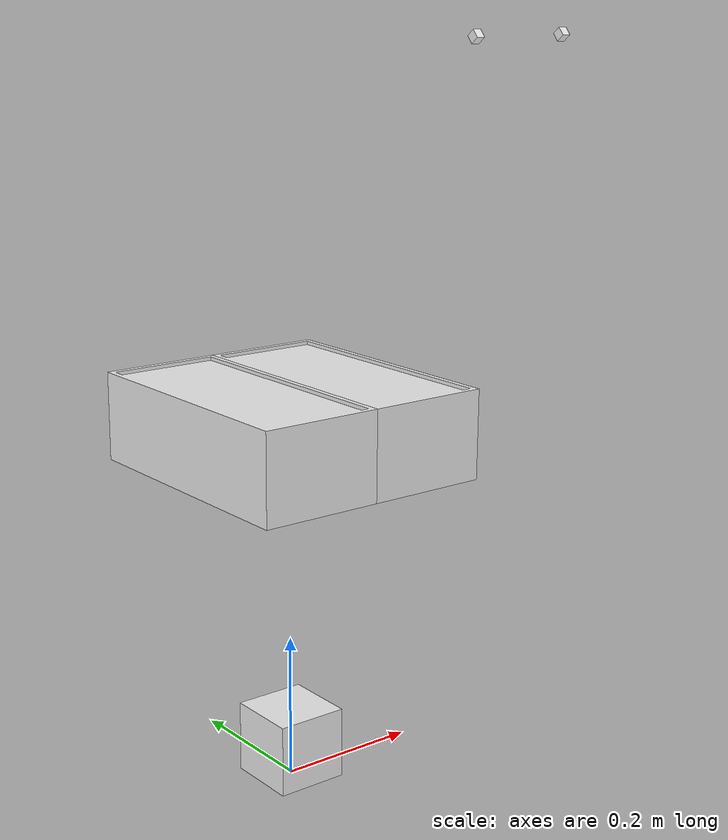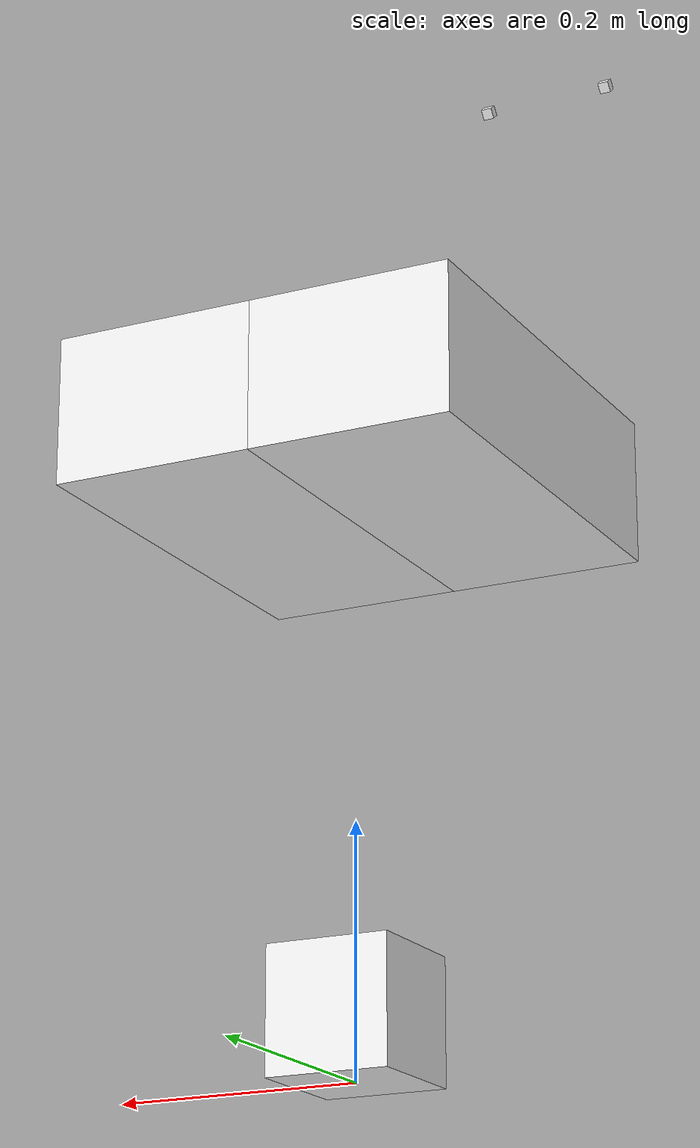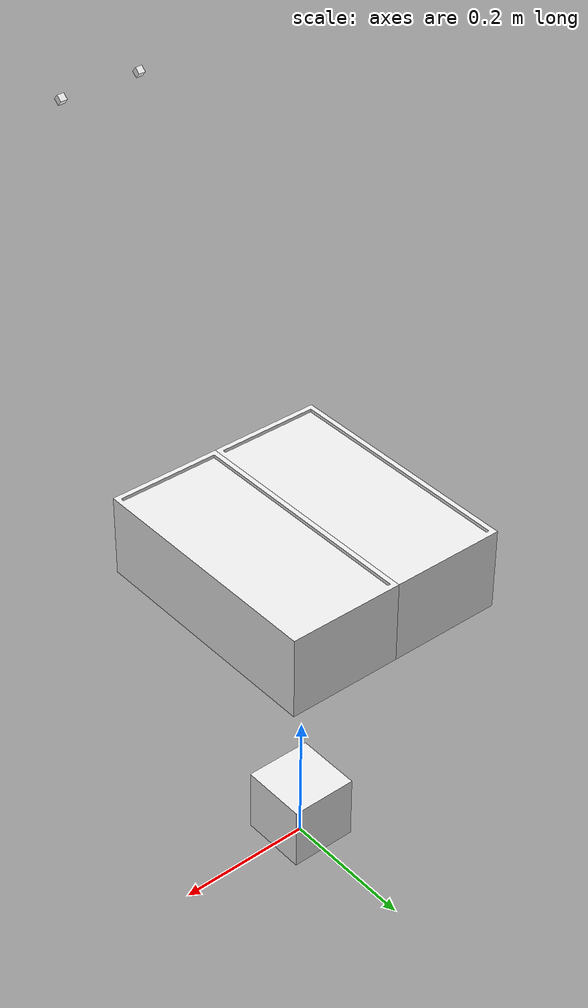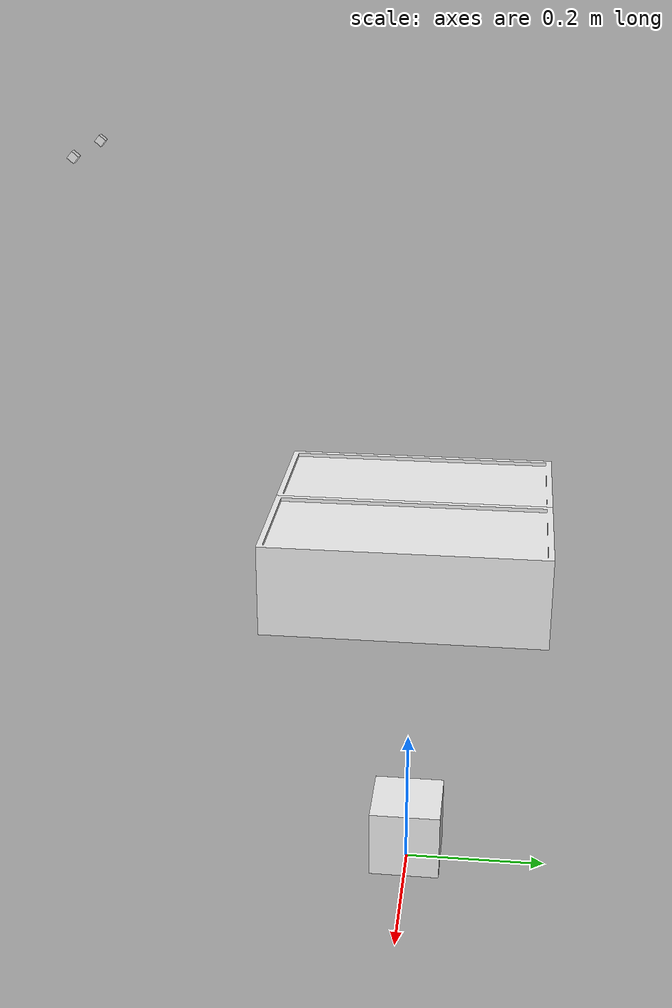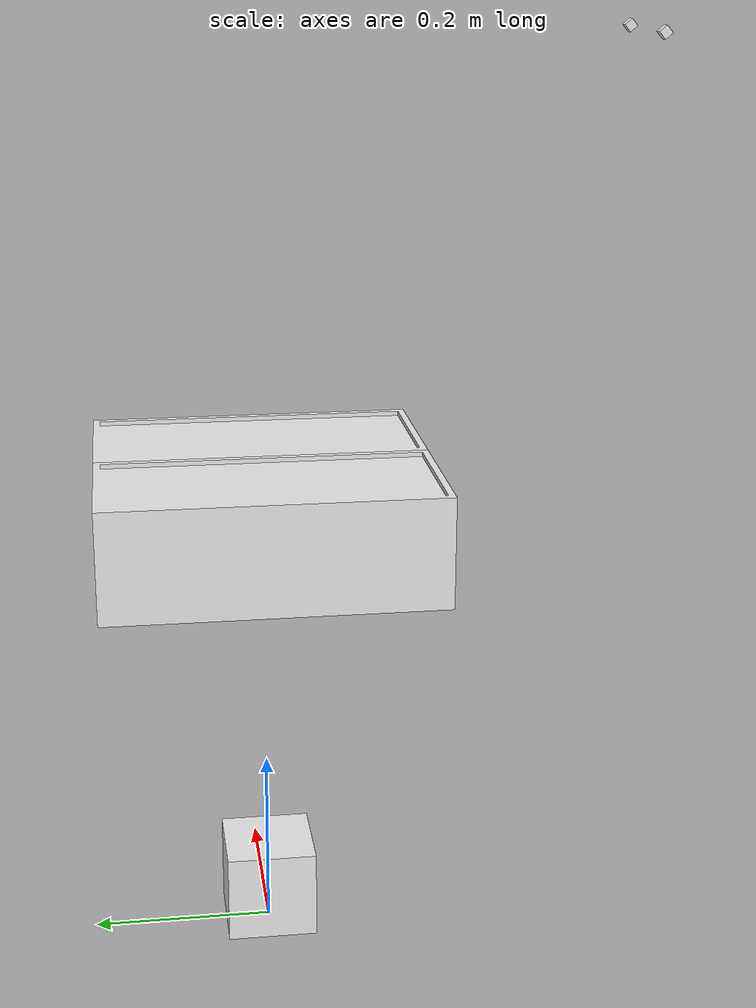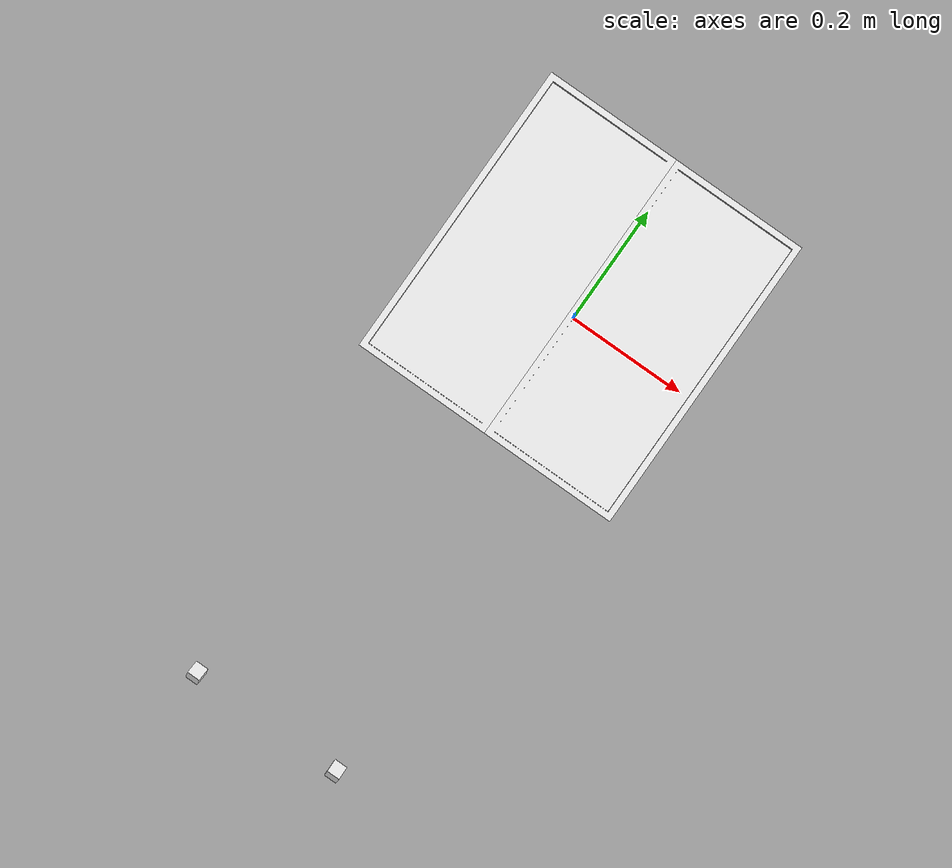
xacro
<?xml version="1.0"?>
<robot name="ice_cream_trays"
xmlns:xacro="http://www.ros.org/wiki/xacro">

<xacro:include filename="$(find scooping_cv)/models/zed_camera_gazebo.gazebo"/>

<!--__________CONSTANTS__________-->
<xacro:property name="deg_to_rad" value="0.01745329251994329577"/>

<!--__________VARIABLES__________-->
<xacro:property name= "baseline" value="0.65" />
<xacro:property name= "tray_length" value="0.36"/>
<xacro:property name= "tray_width" value="0.165"/>
<xacro:property name= "tray_height" value="0.12"/>
<xacro:property name= "baseline" value="0.12" />
<xacro:property name= "camera_size" value="0.01"/>

<!--__________LINKS____________-->
	<link name= "world"/> <!--fixed world link-->

	<link name= "base_link">
		<visual>
			<geometry>
				<box size="0.1 0.1 0.1"/>
			</geometry>
			<origin rpy="0 0 0" xyz="0 0 0.05"/>
			<material name="white"/>
		</visual>

		<inertial>
			<mass value="1"/>
			<origin xyz="0 0 0" rpy="0 0 0"/>
			<inertia ixx="1" ixy="0" ixz="0" iyy="1" iyz="0" izz="1" />
			<origin rpy="0 0 0" xyz="0 0 0"/>
		</inertial>

		<collision>
			<geometry>
				<box size="0.1 0.1 0.1"/>
			</geometry>
			<origin rpy="0 0 0" xyz="0 0 0.05"/>
		</collision>
	</link>

	<link name= "vanilla_link">
		<visual>
			<geometry>
				<mesh filename="package://scooping_cv/meshes/ice_cream_tray_vanilla.dae"/>

			</geometry>
			<origin rpy="0 0 ${deg_to_rad*90}" xyz="${tray_width/2} ${-tray_length/2} ${-tray_height/2}"/>
			<material name="white"/>
		</visual>

		<inertial>
			<mass value="1e-5"/>
			<origin xyz="0 0 0" rpy="0 0 0"/>
			<inertia ixx="1e-6" ixy="0" ixz="0" iyy="1e-6" iyz="0" izz="1e-6" />
			<origin rpy="0 0 0" xyz="0 0 0"/>
		</inertial>

		<collision>
			<geometry>
				<box size="${tray_width} ${tray_length} ${tray_height}"/>
			</geometry>
			<origin rpy="0 0 0" xyz="0 0 0"/>
		</collision>
	</link>

    <link name= "chocolate_link">
		<visual>
			<geometry>
				<mesh filename="package://scooping_cv/meshes/ice_cream_tray_chocolate.dae"/>
			</geometry>
			<origin rpy="0 0 ${deg_to_rad*90}" xyz="${tray_width/2} ${-tray_length/2} ${-tray_height/2}"/>
			<material name="white"/>
		</visual>

		<inertial>
			<mass value="1e-5"/>
			<origin xyz="0 0 0" rpy="0 0 0"/>
			<inertia ixx="1e-6" ixy="0" ixz="0" iyy="1e-6" iyz="0" izz="1e-6" />
			<origin rpy="0 0 0" xyz="0 0 0"/>
		</inertial>

		<collision>
			<geometry>
				<box size="${tray_width} ${tray_length} ${tray_height}"/>
			</geometry>
			<origin rpy="0 0 0" xyz="0 0 0"/>
		</collision>
	</link>

	<link name= "cam_left_link">
		<visual>
			<geometry>
				<box size="${camera_size} ${camera_size} ${camera_size}"/>
			</geometry>
			<origin rpy="0 0 0" xyz="0 0 0"/>
			<material name="white"/>
		</visual>

		<inertial>
			<mass value="1e-5"/>
			<origin xyz="0 0 0" rpy="0 0 0"/>
			<inertia ixx="1e-6" ixy="0" ixz="0" iyy="1e-6" iyz="0" izz="1e-6" />
			<origin rpy="0 0 0" xyz="0 0 0"/>
		</inertial>

		<collision>
			<geometry>
				<box size="${camera_size} ${camera_size} ${camera_size}"/>
			</geometry>
			<origin rpy="0 0 ${deg_to_rad *90}" xyz="0 0 0"/>
		</collision>
	</link>

	<link name= "cam_right_link">
		<visual>
			<geometry>
				<box size="${camera_size} ${camera_size} ${camera_size}"/>
			</geometry>
			<origin rpy="0 0 0" xyz="0 0 0"/>
			<material name="white"/>
		</visual>

		<inertial>
			<mass value="1e-5"/>
			<origin xyz="0 0 0" rpy="0 0 0"/>
			<inertia ixx="1e-6" ixy="0" ixz="0" iyy="1e-6" iyz="0" izz="1e-6" />
			<origin rpy="0 0 0" xyz="0 0 0"/>
		</inertial>

		<collision>
			<geometry>
				<box size="${camera_size} ${camera_size} ${camera_size}"/>
			</geometry>
			<origin rpy="0 0 0" xyz="0 0 0"/>
		</collision>
	</link>

<!--___________JOINTS___________-->
	<joint name= "fixed_joint" type="fixed">
		<parent link="world"/>
		<child link="base_link"/>
   		<origin xyz="0 0 0"/>
	</joint>

	<joint name= "joint1" type="continuous">
		<parent link="base_link"/>
		<child link="vanilla_link"/>
		<origin xyz="${-tray_width/2} 0 0.5" rpy="0 0 ${0}"/>
		<axis xyz="0 0 1" rpy="0 0 0"/>
	</joint>

	<joint name= "joint2" type="continuous">
		<parent link="base_link"/>
		<child link="chocolate_link"/>
		<origin xyz="${tray_width/2} 0 0.5" rpy="0 0 ${0}"/>
		<axis xyz="0 0 1"/>
	</joint>

		<joint name= "joint_cam_left" type="continuous">
		<parent link="base_link"/>
		<child link="cam_left_link"/>
		<origin xyz="${-(baseline/2)} -0.4 1" rpy="0 ${deg_to_rad*40} ${deg_to_rad*90}"/>
		<axis xyz="0 0 1" rpy="0 0 0"/>
	</joint>

	<joint name= "joint_cam_right" type="continuous">
		<parent link="base_link"/>
		<child link="cam_right_link"/>
		<origin xyz="${baseline/2} -0.4 1" rpy="0 ${deg_to_rad*40} ${deg_to_rad*90}"/>
		<axis xyz="0 0 1"/>
	</joint>

</robot>
